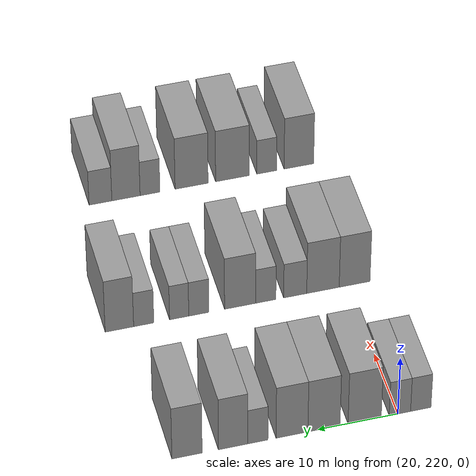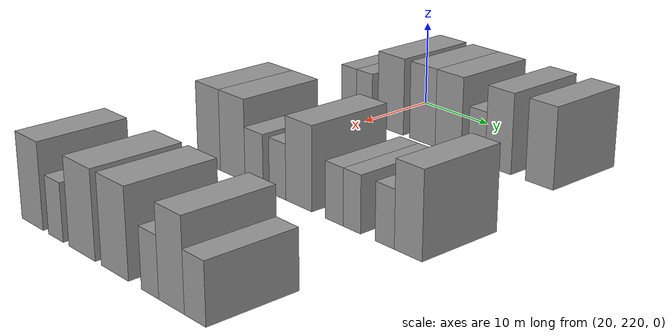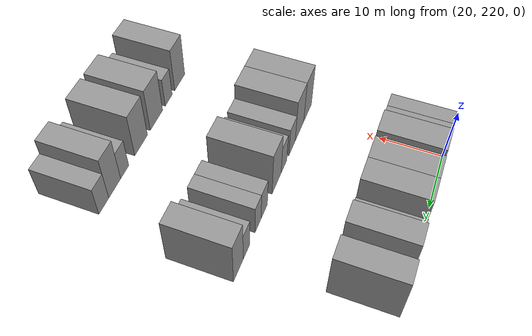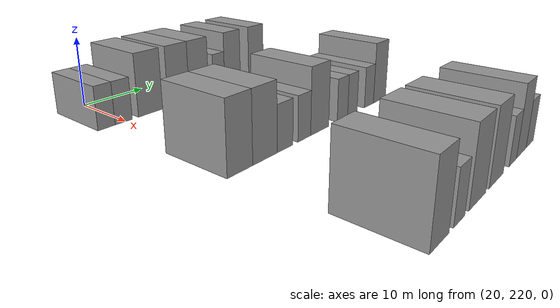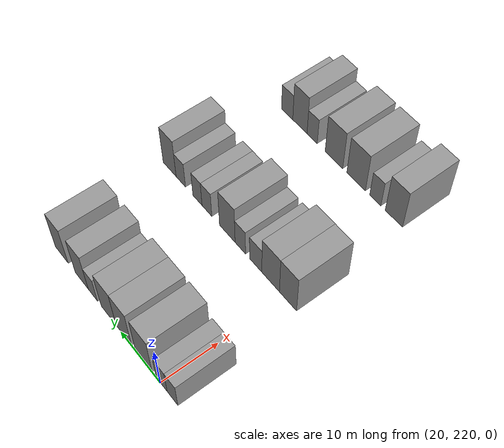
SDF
<sdf version="1.6">
 <world name="default">
  <model name="building_114">
   <static>1</static>
   <pose>25.0000 217.1213 0 0.000000 0.000000 0.000000</pose>
   <link name="link">
    <pose>0 0 3.00 0 0 0</pose>
    <collision name="collision"><geometry><box><size>10.0000 2.5677 6.0000</size></box></geometry></collision>
    <visual name="visual">
     <cast_shadows>0</cast_shadows>
     <geometry><box><size>10.0000 2.5677 6.0000</size></box></geometry>
     <material>
      <script>
       <uri>model://grey_wall/materials/scripts</uri>
       <uri>model://grey_wall/materials/textures</uri>
       <name>vrc/grey_wall</name>
      </script>
     </material>
    </visual>
   </link>
  </model>
  <model name="building_115">
   <static>1</static>
   <pose>25.0000 219.7483 0 0.000000 0.000000 0.000000</pose>
   <link name="link">
    <pose>0 0 3.00 0 0 0</pose>
    <collision name="collision"><geometry><box><size>10.0000 2.6865 6.0000</size></box></geometry></collision>
    <visual name="visual">
     <cast_shadows>0</cast_shadows>
     <geometry><box><size>10.0000 2.6865 6.0000</size></box></geometry>
     <material>
      <script>
       <uri>model://grey_wall/materials/scripts</uri>
       <uri>model://grey_wall/materials/textures</uri>
       <name>vrc/grey_wall</name>
      </script>
     </material>
    </visual>
   </link>
  </model>
  <model name="building_116">
   <static>1</static>
   <pose>25.0000 224.1711 0 0.000000 0.000000 0.000000</pose>
   <link name="link">
    <pose>0 0 4.50 0 0 0</pose>
    <collision name="collision"><geometry><box><size>10.0000 4.1591 9.0000</size></box></geometry></collision>
    <visual name="visual">
     <cast_shadows>0</cast_shadows>
     <geometry><box><size>10.0000 4.1591 9.0000</size></box></geometry>
     <material>
      <script>
       <uri>model://grey_wall/materials/scripts</uri>
       <uri>model://grey_wall/materials/textures</uri>
       <name>vrc/grey_wall</name>
      </script>
     </material>
    </visual>
   </link>
  </model>
  <model name="building_117">
   <static>1</static>
   <pose>25.0000 229.2559 0 0.000000 0.000000 0.000000</pose>
   <link name="link">
    <pose>0 0 4.50 0 0 0</pose>
    <collision name="collision"><geometry><box><size>10.0000 4.0103 9.0000</size></box></geometry></collision>
    <visual name="visual">
     <cast_shadows>0</cast_shadows>
     <geometry><box><size>10.0000 4.0103 9.0000</size></box></geometry>
     <material>
      <script>
       <uri>model://grey_wall/materials/scripts</uri>
       <uri>model://grey_wall/materials/textures</uri>
       <name>vrc/grey_wall</name>
      </script>
     </material>
    </visual>
   </link>
  </model>
  <model name="building_118">
   <static>1</static>
   <pose>25.0000 233.2376 0 0.000000 0.000000 0.000000</pose>
   <link name="link">
    <pose>0 0 4.50 0 0 0</pose>
    <collision name="collision"><geometry><box><size>10.0000 3.9533 9.0000</size></box></geometry></collision>
    <visual name="visual">
     <cast_shadows>0</cast_shadows>
     <geometry><box><size>10.0000 3.9533 9.0000</size></box></geometry>
     <material>
      <script>
       <uri>model://grey_wall/materials/scripts</uri>
       <uri>model://grey_wall/materials/textures</uri>
       <name>vrc/grey_wall</name>
      </script>
     </material>
    </visual>
   </link>
  </model>
  <model name="building_119">
   <static>1</static>
   <pose>25.0000 237.4636 0 0.000000 0.000000 0.000000</pose>
   <link name="link">
    <pose>0 0 3.00 0 0 0</pose>
    <collision name="collision"><geometry><box><size>10.0000 2.4986 6.0000</size></box></geometry></collision>
    <visual name="visual">
     <cast_shadows>0</cast_shadows>
     <geometry><box><size>10.0000 2.4986 6.0000</size></box></geometry>
     <material>
      <script>
       <uri>model://grey_wall/materials/scripts</uri>
       <uri>model://grey_wall/materials/textures</uri>
       <name>vrc/grey_wall</name>
      </script>
     </material>
    </visual>
   </link>
  </model>
  <model name="building_120">
   <static>1</static>
   <pose>25.0000 240.5267 0 0.000000 0.000000 0.000000</pose>
   <link name="link">
    <pose>0 0 4.50 0 0 0</pose>
    <collision name="collision"><geometry><box><size>10.0000 3.6276 9.0000</size></box></geometry></collision>
    <visual name="visual">
     <cast_shadows>0</cast_shadows>
     <geometry><box><size>10.0000 3.6276 9.0000</size></box></geometry>
     <material>
      <script>
       <uri>model://grey_wall/materials/scripts</uri>
       <uri>model://grey_wall/materials/textures</uri>
       <name>vrc/grey_wall</name>
      </script>
     </material>
    </visual>
   </link>
  </model>
  <model name="building_121">
   <static>1</static>
   <pose>25.0000 246.1975 0 0.000000 0.000000 0.000000</pose>
   <link name="link">
    <pose>0 0 4.50 0 0 0</pose>
    <collision name="collision"><geometry><box><size>10.0000 3.7140 9.0000</size></box></geometry></collision>
    <visual name="visual">
     <cast_shadows>0</cast_shadows>
     <geometry><box><size>10.0000 3.7140 9.0000</size></box></geometry>
     <material>
      <script>
       <uri>model://grey_wall/materials/scripts</uri>
       <uri>model://grey_wall/materials/textures</uri>
       <name>vrc/grey_wall</name>
      </script>
     </material>
    </visual>
   </link>
  </model>
  <model name="building_239">
   <static>1</static>
   <pose>47.0000 219.1300 0 0.000000 0.000000 0.000000</pose>
   <link name="link">
    <pose>0 0 4.50 0 0 0</pose>
    <collision name="collision"><geometry><box><size>10.0000 4.0009 9.0000</size></box></geometry></collision>
    <visual name="visual">
     <cast_shadows>0</cast_shadows>
     <geometry><box><size>10.0000 4.0009 9.0000</size></box></geometry>
     <material>
      <script>
       <uri>model://grey_wall/materials/scripts</uri>
       <uri>model://grey_wall/materials/textures</uri>
       <name>vrc/grey_wall</name>
      </script>
     </material>
    </visual>
   </link>
  </model>
  <model name="building_240">
   <static>1</static>
   <pose>47.0000 223.2328 0 0.000000 0.000000 0.000000</pose>
   <link name="link">
    <pose>0 0 4.50 0 0 0</pose>
    <collision name="collision"><geometry><box><size>10.0000 4.2047 9.0000</size></box></geometry></collision>
    <visual name="visual">
     <cast_shadows>0</cast_shadows>
     <geometry><box><size>10.0000 4.2047 9.0000</size></box></geometry>
     <material>
      <script>
       <uri>model://grey_wall/materials/scripts</uri>
       <uri>model://grey_wall/materials/textures</uri>
       <name>vrc/grey_wall</name>
      </script>
     </material>
    </visual>
   </link>
  </model>
  <model name="building_241">
   <static>1</static>
   <pose>47.0000 226.8242 0 0.000000 0.000000 0.000000</pose>
   <link name="link">
    <pose>0 0 3.00 0 0 0</pose>
    <collision name="collision"><geometry><box><size>10.0000 2.9781 6.0000</size></box></geometry></collision>
    <visual name="visual">
     <cast_shadows>0</cast_shadows>
     <geometry><box><size>10.0000 2.9781 6.0000</size></box></geometry>
     <material>
      <script>
       <uri>model://grey_wall/materials/scripts</uri>
       <uri>model://grey_wall/materials/textures</uri>
       <name>vrc/grey_wall</name>
      </script>
     </material>
    </visual>
   </link>
  </model>
  <model name="building_242">
   <static>1</static>
   <pose>47.0000 230.6223 0 0.000000 0.000000 0.000000</pose>
   <link name="link">
    <pose>0 0 3.00 0 0 0</pose>
    <collision name="collision"><geometry><box><size>10.0000 2.6182 6.0000</size></box></geometry></collision>
    <visual name="visual">
     <cast_shadows>0</cast_shadows>
     <geometry><box><size>10.0000 2.6182 6.0000</size></box></geometry>
     <material>
      <script>
       <uri>model://grey_wall/materials/scripts</uri>
       <uri>model://grey_wall/materials/textures</uri>
       <name>vrc/grey_wall</name>
      </script>
     </material>
    </visual>
   </link>
  </model>
  <model name="building_243">
   <static>1</static>
   <pose>47.0000 233.9207 0 0.000000 0.000000 0.000000</pose>
   <link name="link">
    <pose>0 0 4.50 0 0 0</pose>
    <collision name="collision"><geometry><box><size>10.0000 3.9786 9.0000</size></box></geometry></collision>
    <visual name="visual">
     <cast_shadows>0</cast_shadows>
     <geometry><box><size>10.0000 3.9786 9.0000</size></box></geometry>
     <material>
      <script>
       <uri>model://grey_wall/materials/scripts</uri>
       <uri>model://grey_wall/materials/textures</uri>
       <name>vrc/grey_wall</name>
      </script>
     </material>
    </visual>
   </link>
  </model>
  <model name="building_244">
   <static>1</static>
   <pose>47.0000 239.2005 0 0.000000 0.000000 0.000000</pose>
   <link name="link">
    <pose>0 0 3.00 0 0 0</pose>
    <collision name="collision"><geometry><box><size>10.0000 2.5810 6.0000</size></box></geometry></collision>
    <visual name="visual">
     <cast_shadows>0</cast_shadows>
     <geometry><box><size>10.0000 2.5810 6.0000</size></box></geometry>
     <material>
      <script>
       <uri>model://grey_wall/materials/scripts</uri>
       <uri>model://grey_wall/materials/textures</uri>
       <name>vrc/grey_wall</name>
      </script>
     </material>
    </visual>
   </link>
  </model>
  <model name="building_245">
   <static>1</static>
   <pose>47.0000 241.7146 0 0.000000 0.000000 0.000000</pose>
   <link name="link">
    <pose>0 0 3.00 0 0 0</pose>
    <collision name="collision"><geometry><box><size>10.0000 2.4471 6.0000</size></box></geometry></collision>
    <visual name="visual">
     <cast_shadows>0</cast_shadows>
     <geometry><box><size>10.0000 2.4471 6.0000</size></box></geometry>
     <material>
      <script>
       <uri>model://grey_wall/materials/scripts</uri>
       <uri>model://grey_wall/materials/textures</uri>
       <name>vrc/grey_wall</name>
      </script>
     </material>
    </visual>
   </link>
  </model>
  <model name="building_246">
   <static>1</static>
   <pose>47.0000 246.2211 0 0.000000 0.000000 0.000000</pose>
   <link name="link">
    <pose>0 0 3.00 0 0 0</pose>
    <collision name="collision"><geometry><box><size>10.0000 2.5660 6.0000</size></box></geometry></collision>
    <visual name="visual">
     <cast_shadows>0</cast_shadows>
     <geometry><box><size>10.0000 2.5660 6.0000</size></box></geometry>
     <material>
      <script>
       <uri>model://grey_wall/materials/scripts</uri>
       <uri>model://grey_wall/materials/textures</uri>
       <name>vrc/grey_wall</name>
      </script>
     </material>
    </visual>
   </link>
  </model>
  <model name="building_247">
   <static>1</static>
   <pose>47.0000 249.3078 0 0.000000 0.000000 0.000000</pose>
   <link name="link">
    <pose>0 0 4.50 0 0 0</pose>
    <collision name="collision"><geometry><box><size>10.0000 3.6072 9.0000</size></box></geometry></collision>
    <visual name="visual">
     <cast_shadows>0</cast_shadows>
     <geometry><box><size>10.0000 3.6072 9.0000</size></box></geometry>
     <material>
      <script>
       <uri>model://grey_wall/materials/scripts</uri>
       <uri>model://grey_wall/materials/textures</uri>
       <name>vrc/grey_wall</name>
      </script>
     </material>
    </visual>
   </link>
  </model>
  <model name="building_363">
   <static>1</static>
   <pose>69.0000 220.3198 0 0.000000 0.000000 0.000000</pose>
   <link name="link">
    <pose>0 0 4.50 0 0 0</pose>
    <collision name="collision"><geometry><box><size>10.0000 3.9623 9.0000</size></box></geometry></collision>
    <visual name="visual">
     <cast_shadows>0</cast_shadows>
     <geometry><box><size>10.0000 3.9623 9.0000</size></box></geometry>
     <material>
      <script>
       <uri>model://grey_wall/materials/scripts</uri>
       <uri>model://grey_wall/materials/textures</uri>
       <name>vrc/grey_wall</name>
      </script>
     </material>
    </visual>
   </link>
  </model>
  <model name="building_364">
   <static>1</static>
   <pose>69.0000 224.6204 0 0.000000 0.000000 0.000000</pose>
   <link name="link">
    <pose>0 0 3.00 0 0 0</pose>
    <collision name="collision"><geometry><box><size>10.0000 2.6389 6.0000</size></box></geometry></collision>
    <visual name="visual">
     <cast_shadows>0</cast_shadows>
     <geometry><box><size>10.0000 2.6389 6.0000</size></box></geometry>
     <material>
      <script>
       <uri>model://grey_wall/materials/scripts</uri>
       <uri>model://grey_wall/materials/textures</uri>
       <name>vrc/grey_wall</name>
      </script>
     </material>
    </visual>
   </link>
  </model>
  <model name="building_365">
   <static>1</static>
   <pose>69.0000 229.1837 0 0.000000 0.000000 0.000000</pose>
   <link name="link">
    <pose>0 0 4.50 0 0 0</pose>
    <collision name="collision"><geometry><box><size>10.0000 4.4877 9.0000</size></box></geometry></collision>
    <visual name="visual">
     <cast_shadows>0</cast_shadows>
     <geometry><box><size>10.0000 4.4877 9.0000</size></box></geometry>
     <material>
      <script>
       <uri>model://grey_wall/materials/scripts</uri>
       <uri>model://grey_wall/materials/textures</uri>
       <name>vrc/grey_wall</name>
      </script>
     </material>
    </visual>
   </link>
  </model>
  <model name="building_366">
   <static>1</static>
   <pose>69.0000 234.6132 0 0.000000 0.000000 0.000000</pose>
   <link name="link">
    <pose>0 0 4.50 0 0 0</pose>
    <collision name="collision"><geometry><box><size>10.0000 4.3713 9.0000</size></box></geometry></collision>
    <visual name="visual">
     <cast_shadows>0</cast_shadows>
     <geometry><box><size>10.0000 4.3713 9.0000</size></box></geometry>
     <material>
      <script>
       <uri>model://grey_wall/materials/scripts</uri>
       <uri>model://grey_wall/materials/textures</uri>
       <name>vrc/grey_wall</name>
      </script>
     </material>
    </visual>
   </link>
  </model>
  <model name="building_367">
   <static>1</static>
   <pose>69.0000 240.1089 0 0.000000 0.000000 0.000000</pose>
   <link name="link">
    <pose>0 0 3.00 0 0 0</pose>
    <collision name="collision"><geometry><box><size>10.0000 2.6202 6.0000</size></box></geometry></collision>
    <visual name="visual">
     <cast_shadows>0</cast_shadows>
     <geometry><box><size>10.0000 2.6202 6.0000</size></box></geometry>
     <material>
      <script>
       <uri>model://grey_wall/materials/scripts</uri>
       <uri>model://grey_wall/materials/textures</uri>
       <name>vrc/grey_wall</name>
      </script>
     </material>
    </visual>
   </link>
  </model>
  <model name="building_368">
   <static>1</static>
   <pose>69.0000 243.2758 0 0.000000 0.000000 0.000000</pose>
   <link name="link">
    <pose>0 0 4.50 0 0 0</pose>
    <collision name="collision"><geometry><box><size>10.0000 3.7135 9.0000</size></box></geometry></collision>
    <visual name="visual">
     <cast_shadows>0</cast_shadows>
     <geometry><box><size>10.0000 3.7135 9.0000</size></box></geometry>
     <material>
      <script>
       <uri>model://grey_wall/materials/scripts</uri>
       <uri>model://grey_wall/materials/textures</uri>
       <name>vrc/grey_wall</name>
      </script>
     </material>
    </visual>
   </link>
  </model>
  <model name="building_369">
   <static>1</static>
   <pose>69.0000 246.6278 0 0.000000 0.000000 0.000000</pose>
   <link name="link">
    <pose>0 0 3.00 0 0 0</pose>
    <collision name="collision"><geometry><box><size>10.0000 2.9905 6.0000</size></box></geometry></collision>
    <visual name="visual">
     <cast_shadows>0</cast_shadows>
     <geometry><box><size>10.0000 2.9905 6.0000</size></box></geometry>
     <material>
      <script>
       <uri>model://grey_wall/materials/scripts</uri>
       <uri>model://grey_wall/materials/textures</uri>
       <name>vrc/grey_wall</name>
      </script>
     </material>
    </visual>
   </link>
  </model>
 </world>
</sdf>
